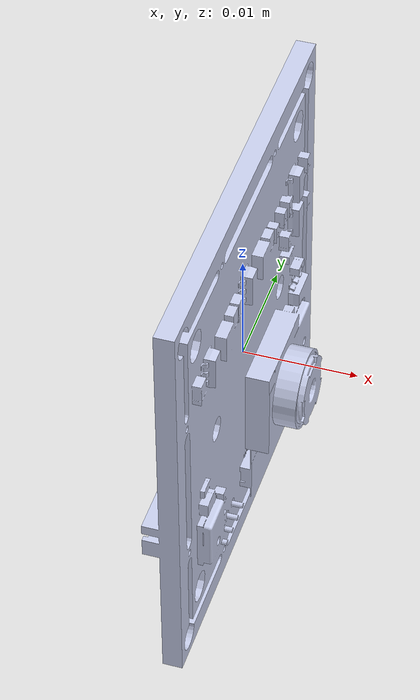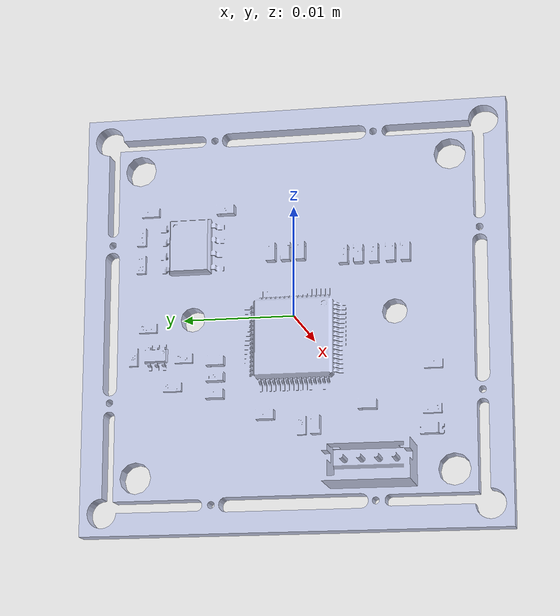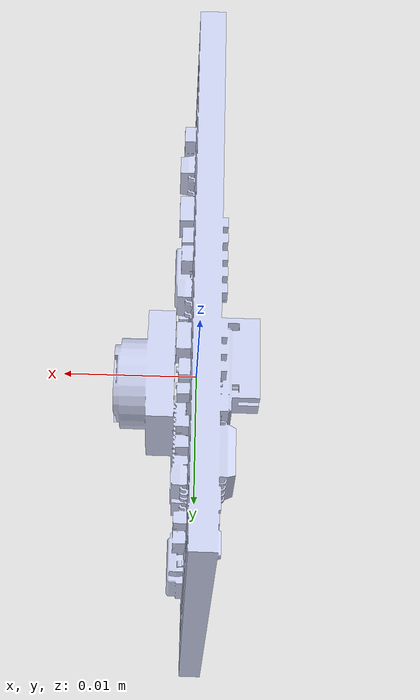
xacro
<?xml version="1.0" encoding="utf-8"?>
<robot name="adrucam" xmlns:xacro="http://ros.org/wiki/xacro">

  <xacro:include filename="$(find adrucam)/urdf/adrucam.urdf.xacro" />

  <link name="world"/>

	<joint name="adrucam_base_joint" type="fixed">
	  <origin xyz="0 0 0" />
	  <parent link="world" />
	  <child link="adrucam_base_link" />
	</joint>

</robot>

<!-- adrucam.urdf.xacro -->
<robot xmlns:xacro="http://ros.org/wiki/xacro">

  <link name="adrucam_base_link"/>

	<joint name="adrucam_mesh_joint" type="fixed">
	  <origin
      xyz="0 0 0"
      rpy="0 0 0" />

	  <parent link="adrucam_base_link" />
	  <child link="adrucam_mesh_base_link" />
	</joint>

  <link name="adrucam">
    <origin rpy="0 0 0"/>
  </link>

  <joint name="adrucam_joint" type="fixed">
	  <origin
      xyz="0.002 0 -0.0025"
      rpy="1.57 3.14 1.57"/>
	  <parent link="adrucam_base_link" />
	  <child link="adrucam" />
	</joint>

  <link
    name="adrucam_mesh_base_link">
    <visual>
      <origin
        xyz="-0.068 -0.0145 -0.0765"
        rpy="0 3.14 1.57" />
      <geometry>
        <mesh
          filename="package://adrucam/meshes/base_link.STL" />
      </geometry>
      <material
        name="">
        <color
          rgba="0.792156862745098 0.819607843137255 0.933333333333333 1" />
      </material>
    </visual>
    <collision>
      <origin
        xyz="-0.068 -0.0145 -0.0765"
        rpy="0 3.14 1.57" />
      <geometry>
        <mesh
          filename="package://adrucam/meshes/base_link.STL" />
      </geometry>
    </collision>
  </link>
</robot>
